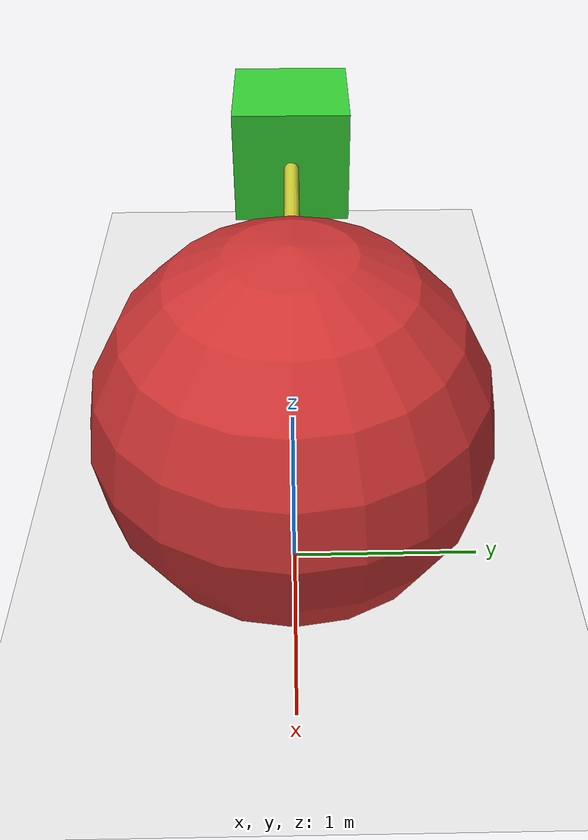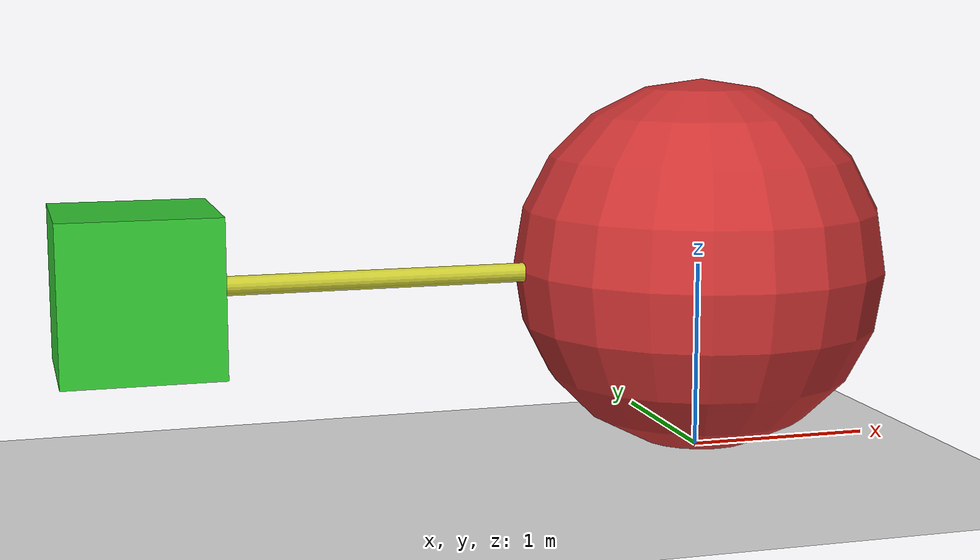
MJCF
<mujoco>
  <option gravity="0 0 -9.81" />
  <worldbody>

    <body name="object_1" pos="-3 0 1">
      <geom type="box" size="0.4 0.4 0.4" density="1" rgba="0.2 0.8 0.2 1" />
      <joint name="object_1_joint" type="free" />
    </body>

    <body name="object_2" pos="0 0 1">
      <geom type="capsule" fromto="0 0 0 -3 0 0" size="0.05" rgba="0.8 0.8 0.2 1" />
    </body>

    <body name="object_4" pos="-10 0 -0.1">
      <geom type="plane" size="25 25 0.1" rgba="0.9 0.9 0.9 1" friction="0.3 0.3 0.3" />
    </body>
  <body name="damper_low" pos="0.0 0.0 1.0"><geom type="sphere" size="1.0" rgba="0.8 0.2 0.2 1.0" /></body><body name="damper_high" pos="0.0 0.0 1.0"><geom type="sphere" size="1.0" rgba="0.2 0.2 0.8 1.0" /></body></worldbody>
</mujoco>
